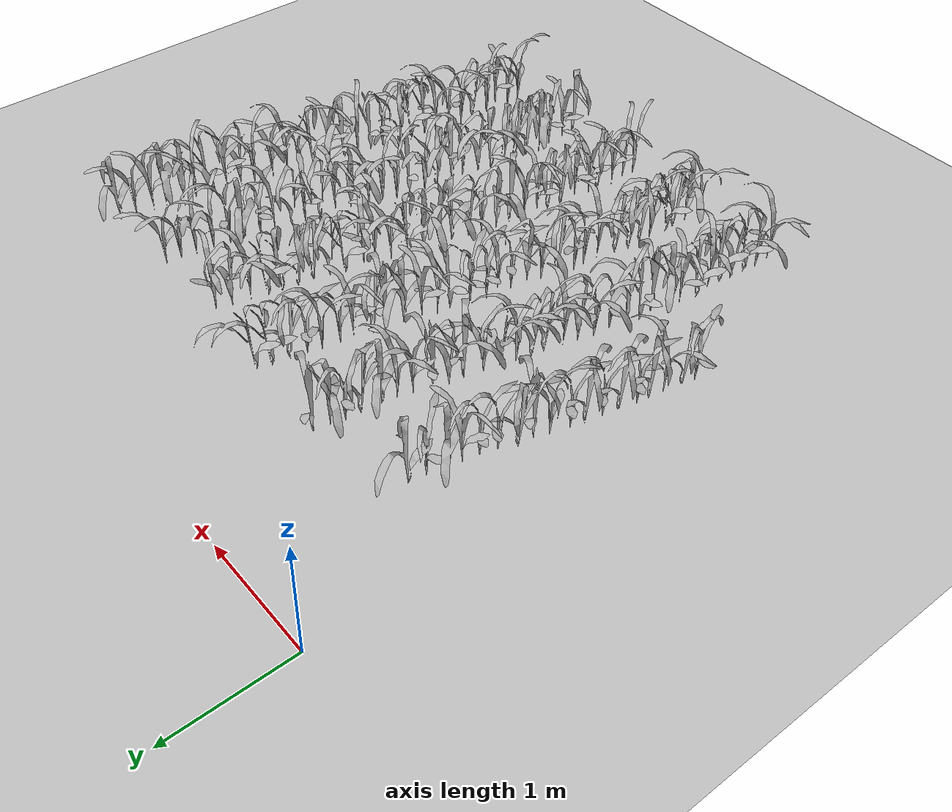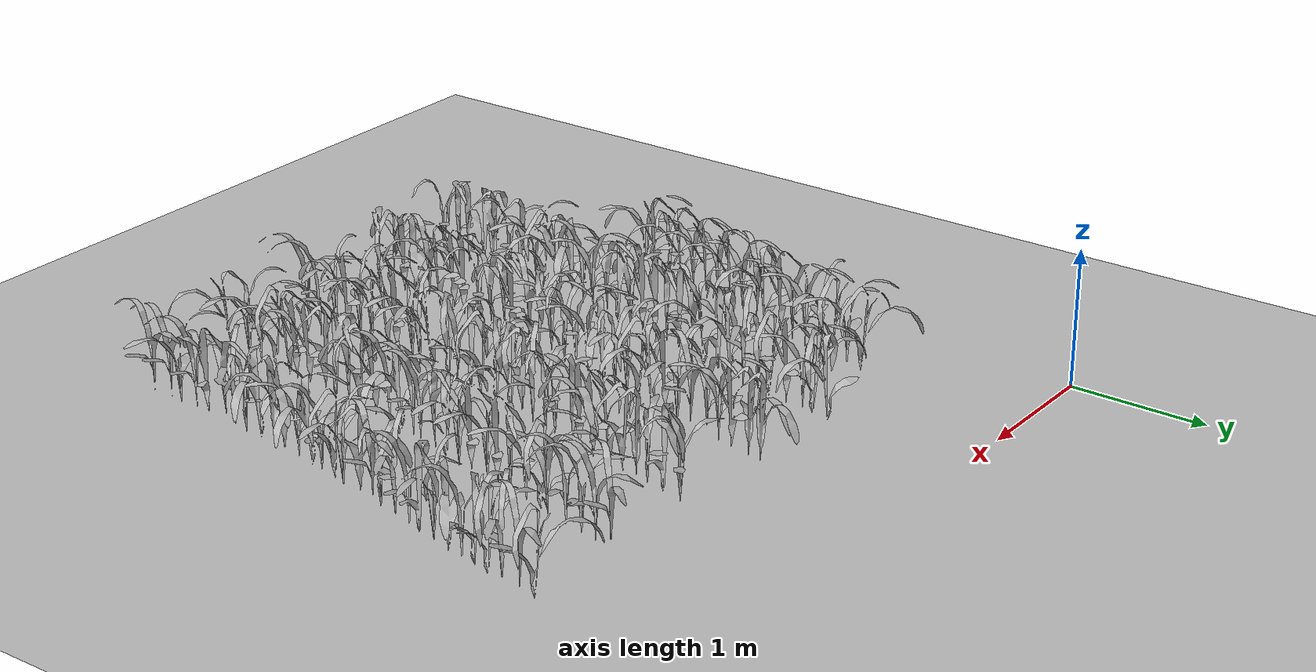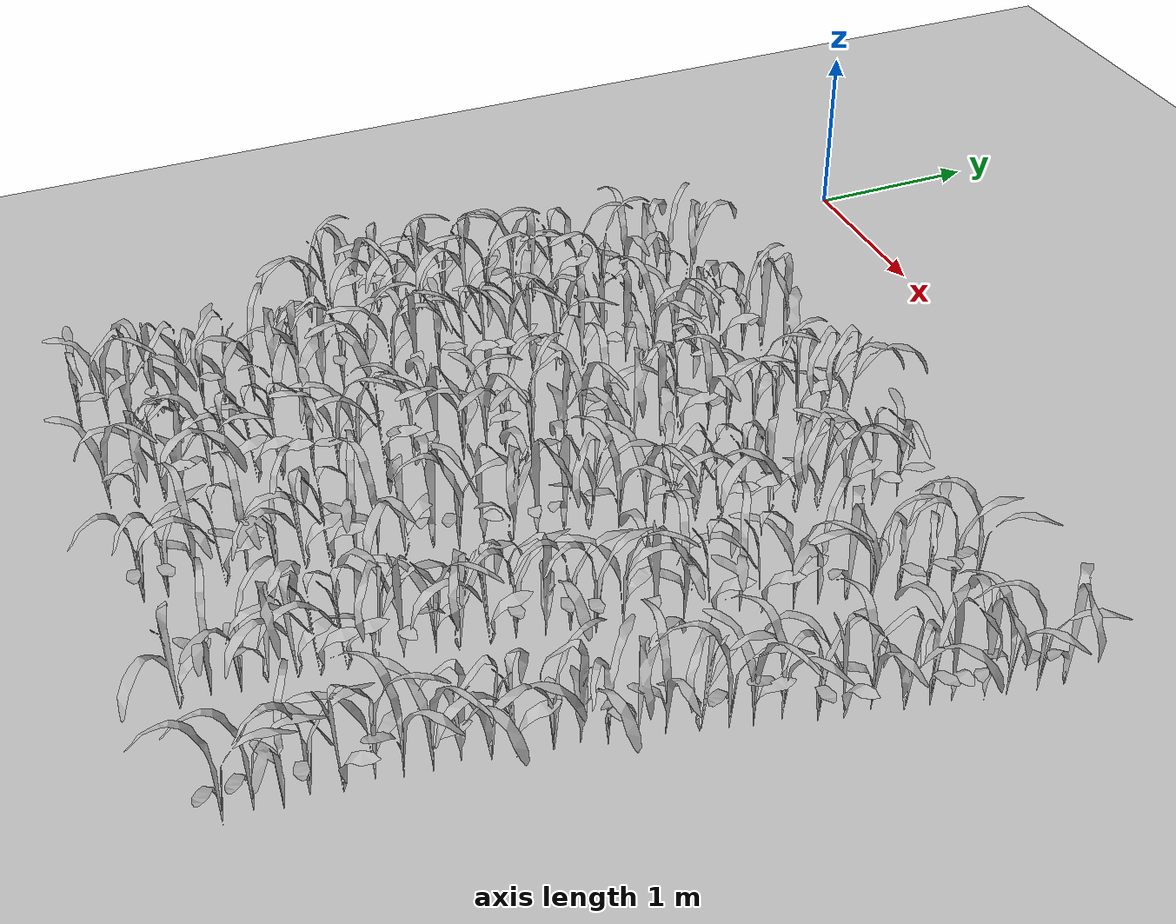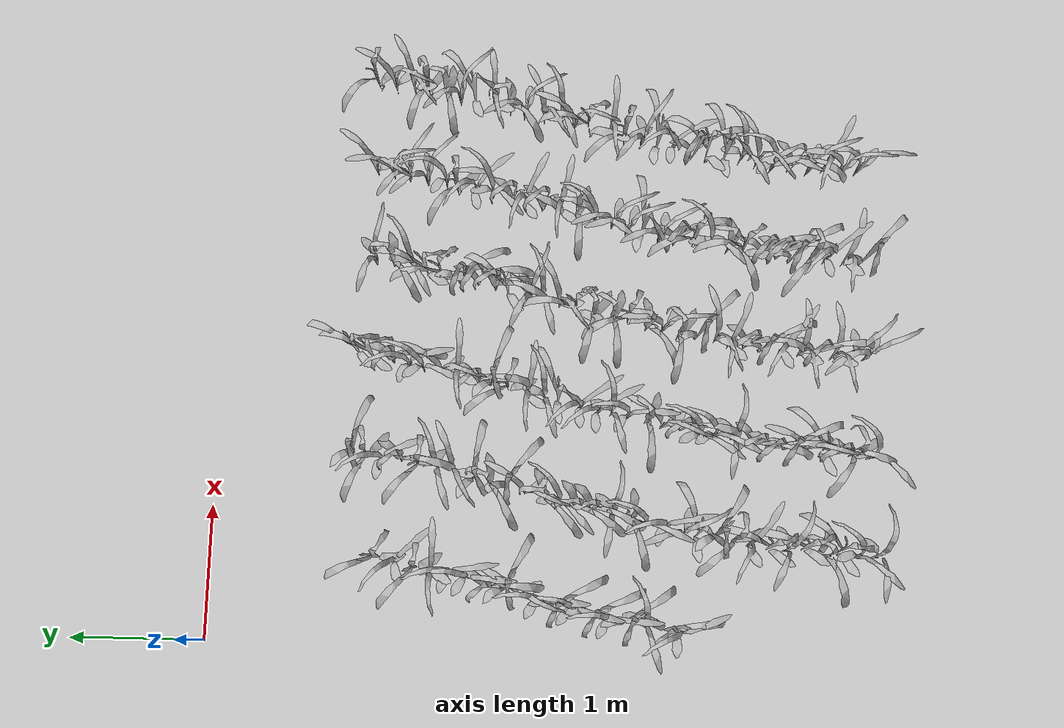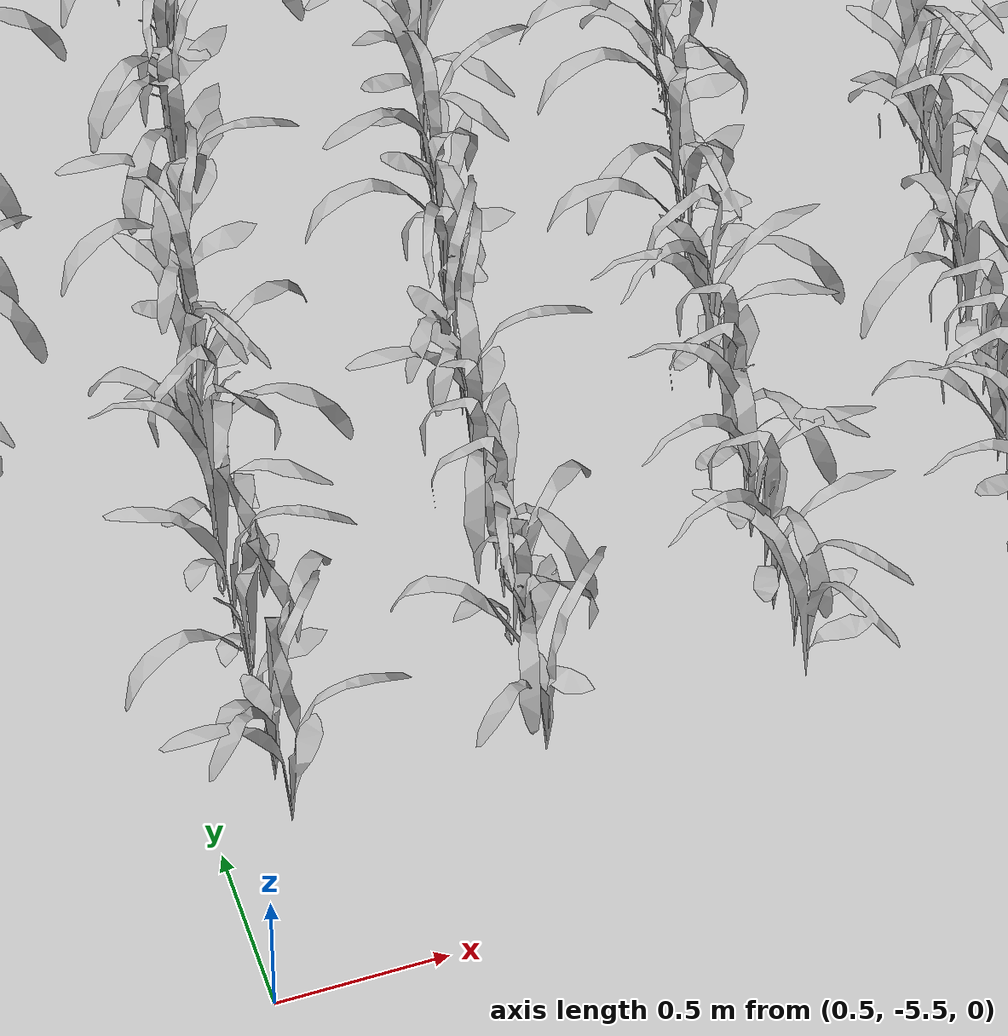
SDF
<sdf version="1.7">
 <world name="default">
  <model name="ground_plane">
   <static>1</static>
   <link name="link">
    <collision name="collision">
     <geometry><plane><normal>0 0 1</normal><size>100 100</size></plane></geometry>
     <surface>
      <contact><collide_bitmask>65535</collide_bitmask></contact>
      <friction><ode><mu>100</mu><mu2>50</mu2></ode></friction>
     </surface>
    </collision>
    <visual name="visual">
     <cast_shadows>0</cast_shadows>
     <geometry><plane><normal>0 0 1</normal><size>100 100</size></plane></geometry>
     <material>
      <script><uri>file://media/materials/scripts/gazebo.material</uri><name>Gazebo/Grey</name></script>
     </material>
    </visual>
   </link>
  </model>
  <include>
   <uri>model://maize_02</uri>
   <pose>0.1277047239134689 -3.4926252040272794 0.0 0.0 0.0 1.0021984375671156</pose>
   <name>maize_02_0400</name>
   <static>true</static>
  </include>
  <include>
   <uri>model://maize_01</uri>
   <pose>0.15152392635024872 -3.3870167927361368 0.0 0.0 0.0 5.639943665620452</pose>
   <name>maize_01_0401</name>
   <static>true</static>
  </include>
  <include>
   <uri>model://maize_02</uri>
   <pose>0.1875724244560694 -3.2309676934646183 0.0 0.0 0.0 5.5798212628701975</pose>
   <name>maize_02_0402</name>
   <static>true</static>
  </include>
  <include>
   <uri>model://maize_01</uri>
   <pose>0.20466012958833404 -3.107736745166044 0.0 0.0 0.0 6.118098017414376</pose>
   <name>maize_01_0403</name>
   <static>true</static>
  </include>
  <include>
   <uri>model://maize_02</uri>
   <pose>0.2175462779112435 -2.993145404726485 0.0 0.0 0.0 0.5346063163302878</pose>
   <name>maize_02_0404</name>
   <static>true</static>
  </include>
  <include>
   <uri>model://maize_01</uri>
   <pose>0.2500528732022624 -2.852034122455555 0.0 0.0 0.0 5.91765327505184</pose>
   <name>maize_01_0405</name>
   <static>true</static>
  </include>
  <include>
   <uri>model://maize_02</uri>
   <pose>0.2845762357668897 -2.7238732735406077 0.0 0.0 0.0 0.3588543243786093</pose>
   <name>maize_02_0406</name>
   <static>true</static>
  </include>
  <include>
   <uri>model://maize_01</uri>
   <pose>0.31663718071819663 -2.5899639587769574 0.0 0.0 0.0 5.979531192545345</pose>
   <name>maize_01_0407</name>
   <static>true</static>
  </include>
  <include>
   <uri>model://maize_02</uri>
   <pose>0.3437963856912069 -2.4705835438003603 0.0 0.0 0.0 0.5199710670581872</pose>
   <name>maize_02_0408</name>
   <static>true</static>
  </include>
  <include>
   <uri>model://maize_02</uri>
   <pose>0.3899523931416204 -2.3201242934992363 0.0 0.0 0.0 3.2497489951838316</pose>
   <name>maize_02_0409</name>
   <static>true</static>
  </include>
  <include>
   <uri>model://maize_01</uri>
   <pose>0.43666427125195345 -2.2166649967277237 0.0 0.0 0.0 0.3125234000211946</pose>
   <name>maize_01_0410</name>
   <static>true</static>
  </include>
  <include>
   <uri>model://maize_01</uri>
   <pose>0.4366089077712753 -2.077201427779984 0.0 0.0 0.0 5.4581638083367725</pose>
   <name>maize_01_0411</name>
   <static>true</static>
  </include>
  <include>
   <uri>model://maize_02</uri>
   <pose>0.4942706937051919 -1.9409190503233227 0.0 0.0 0.0 0.5190449045201507</pose>
   <name>maize_02_0412</name>
   <static>true</static>
  </include>
  <include>
   <uri>model://maize_02</uri>
   <pose>0.5333821467643883 -1.8108121412433411 0.0 0.0 0.0 0.7466258723406464</pose>
   <name>maize_02_0413</name>
   <static>true</static>
  </include>
  <include>
   <uri>model://maize_02</uri>
   <pose>0.551393515317964 -1.672177785380539 0.0 0.0 0.0 2.17413172345358</pose>
   <name>maize_02_0414</name>
   <static>true</static>
  </include>
  <include>
   <uri>model://maize_01</uri>
   <pose>0.574193578098822 -1.5621724347153678 0.0 0.0 0.0 3.2175229171178508</pose>
   <name>maize_01_0415</name>
   <static>true</static>
  </include>
  <include>
   <uri>model://maize_02</uri>
   <pose>0.6107905425712149 -1.4144155714222382 0.0 0.0 0.0 1.3235440084609205</pose>
   <name>maize_02_0416</name>
   <static>true</static>
  </include>
  <include>
   <uri>model://maize_01</uri>
   <pose>0.6414982884192121 -1.2796630970378404 0.0 0.0 0.0 2.791193082371024</pose>
   <name>maize_01_0417</name>
   <static>true</static>
  </include>
  <include>
   <uri>model://maize_02</uri>
   <pose>0.717468267149442 -4.950679886276958 0.0 0.0 0.0 5.237281959077512</pose>
   <name>maize_02_0464</name>
   <static>true</static>
  </include>
  <include>
   <uri>model://maize_02</uri>
   <pose>0.7123961812005529 -4.804322509503669 0.0 0.0 0.0 6.1182013030927855</pose>
   <name>maize_02_0465</name>
   <static>true</static>
  </include>
  <include>
   <uri>model://maize_01</uri>
   <pose>0.7421655740802008 -4.6896552606559245 0.0 0.0 0.0 1.6867244557853553</pose>
   <name>maize_01_0466</name>
   <static>true</static>
  </include>
  <include>
   <uri>model://maize_01</uri>
   <pose>0.7350465480073028 -4.540067368763894 0.0 0.0 0.0 4.217719407159963</pose>
   <name>maize_01_0467</name>
   <static>true</static>
  </include>
  <include>
   <uri>model://maize_01</uri>
   <pose>0.7650809212652275 -4.432710572139986 0.0 0.0 0.0 2.1277782888882872</pose>
   <name>maize_01_0468</name>
   <static>true</static>
  </include>
  <include>
   <uri>model://maize_02</uri>
   <pose>0.7503069461949116 -4.286606244629076 0.0 0.0 0.0 4.856808947746749</pose>
   <name>maize_02_0469</name>
   <static>true</static>
  </include>
  <include>
   <uri>model://maize_01</uri>
   <pose>0.7580829601661346 -4.168495513765396 0.0 0.0 0.0 2.054599571129183</pose>
   <name>maize_01_0470</name>
   <static>true</static>
  </include>
  <include>
   <uri>model://maize_02</uri>
   <pose>0.778083988274943 -4.012264782241085 0.0 0.0 0.0 1.5837229904740955</pose>
   <name>maize_02_0471</name>
   <static>true</static>
  </include>
  <include>
   <uri>model://maize_01</uri>
   <pose>0.8216058158504295 -3.9096848095354377 0.0 0.0 0.0 3.0867015377662756</pose>
   <name>maize_01_0472</name>
   <static>true</static>
  </include>
  <include>
   <uri>model://maize_01</uri>
   <pose>0.837480383160489 -3.7630053681978697 0.0 0.0 0.0 0.265867978428594</pose>
   <name>maize_01_0473</name>
   <static>true</static>
  </include>
  <include>
   <uri>model://maize_01</uri>
   <pose>0.8364524656090252 -3.632757930737775 0.0 0.0 0.0 1.1889546375642823</pose>
   <name>maize_01_0474</name>
   <static>true</static>
  </include>
  <include>
   <uri>model://maize_02</uri>
   <pose>0.8583035469183585 -3.5171970691331973 0.0 0.0 0.0 4.105318458159604</pose>
   <name>maize_02_0475</name>
   <static>true</static>
  </include>
  <include>
   <uri>model://maize_02</uri>
   <pose>0.9056142205577219 -3.391033218966011 0.0 0.0 0.0 0.7799890162854513</pose>
   <name>maize_02_0476</name>
   <static>true</static>
  </include>
  <include>
   <uri>model://maize_02</uri>
   <pose>0.9211406230331379 -3.246308764413866 0.0 0.0 0.0 0.16998319472879322</pose>
   <name>maize_02_0477</name>
   <static>true</static>
  </include>
  <include>
   <uri>model://maize_01</uri>
   <pose>0.9614080078751212 -3.1174407688047343 0.0 0.0 0.0 4.208370546140037</pose>
   <name>maize_01_0478</name>
   <static>true</static>
  </include>
  <include>
   <uri>model://maize_02</uri>
   <pose>0.9876605419223813 -2.992020622446887 0.0 0.0 0.0 5.128662498763261</pose>
   <name>maize_02_0479</name>
   <static>true</static>
  </include>
  <include>
   <uri>model://maize_01</uri>
   <pose>1.0317150974413651 -2.84553424861765 0.0 0.0 0.0 5.07865323575426</pose>
   <name>maize_01_0480</name>
   <static>true</static>
  </include>
  <include>
   <uri>model://maize_01</uri>
   <pose>1.0374943704240616 -2.7294409913921998 0.0 0.0 0.0 4.925102220930413</pose>
   <name>maize_01_0481</name>
   <static>true</static>
  </include>
  <include>
   <uri>model://maize_02</uri>
   <pose>1.072919451673292 -2.607414859283424 0.0 0.0 0.0 6.042266716901151</pose>
   <name>maize_02_0482</name>
   <static>true</static>
  </include>
  <include>
   <uri>model://maize_01</uri>
   <pose>1.0986613338124804 -2.4794643491932575 0.0 0.0 0.0 4.663167473952264</pose>
   <name>maize_01_0483</name>
   <static>true</static>
  </include>
  <include>
   <uri>model://maize_02</uri>
   <pose>1.1389598328079076 -2.349258843681133 0.0 0.0 0.0 3.240414938634114</pose>
   <name>maize_02_0484</name>
   <static>true</static>
  </include>
  <include>
   <uri>model://maize_01</uri>
   <pose>1.188768126276664 -2.2092371770322057 0.0 0.0 0.0 0.09961620560731291</pose>
   <name>maize_01_0485</name>
   <static>true</static>
  </include>
  <include>
   <uri>model://maize_01</uri>
   <pose>1.1983480247249856 -2.07824833536553 0.0 0.0 0.0 4.43576551502959</pose>
   <name>maize_01_0486</name>
   <static>true</static>
  </include>
  <include>
   <uri>model://maize_01</uri>
   <pose>1.2323905012043441 -1.9628520186232155 0.0 0.0 0.0 0.6139487144404128</pose>
   <name>maize_01_0487</name>
   <static>true</static>
  </include>
  <include>
   <uri>model://maize_02</uri>
   <pose>1.2843727465572374 -1.8169375084141175 0.0 0.0 0.0 2.57800557805723</pose>
   <name>maize_02_0488</name>
   <static>true</static>
  </include>
  <include>
   <uri>model://maize_02</uri>
   <pose>1.2962563481693488 -1.6853287236669134 0.0 0.0 0.0 5.6203096588998465</pose>
   <name>maize_02_0489</name>
   <static>true</static>
  </include>
  <include>
   <uri>model://maize_01</uri>
   <pose>1.3297298444552295 -1.5717673564006567 0.0 0.0 0.0 3.22486296027484</pose>
   <name>maize_01_0490</name>
   <static>true</static>
  </include>
  <include>
   <uri>model://maize_01</uri>
   <pose>1.356396103222911 -1.4153062642762662 0.0 0.0 0.0 5.307215230098666</pose>
   <name>maize_01_0491</name>
   <static>true</static>
  </include>
  <include>
   <uri>model://maize_02</uri>
   <pose>1.3604718839425034 -1.2836034022182792 0.0 0.0 0.0 0.9547559430421104</pose>
   <name>maize_02_0492</name>
   <static>true</static>
  </include>
  <include>
   <uri>model://maize_01</uri>
   <pose>1.398513089274952 -1.1752637413636002 0.0 0.0 0.0 3.52339599375698</pose>
   <name>maize_01_0493</name>
   <static>true</static>
  </include>
  <include>
   <uri>model://maize_01</uri>
   <pose>1.4181608995325357 -1.050494995819068 0.0 0.0 0.0 0.4196443565358958</pose>
   <name>maize_01_0494</name>
   <static>true</static>
  </include>
  <include>
   <uri>model://maize_02</uri>
   <pose>1.4589170930458415 -4.9457510007544245 0.0 0.0 0.0 6.016486085664898</pose>
   <name>maize_02_0541</name>
   <static>true</static>
  </include>
  <include>
   <uri>model://maize_01</uri>
   <pose>1.4758856310809605 -4.802717234548133 0.0 0.0 0.0 3.3247491133320275</pose>
   <name>maize_01_0542</name>
   <static>true</static>
  </include>
  <include>
   <uri>model://maize_01</uri>
   <pose>1.4808207075400535 -4.67303034397462 0.0 0.0 0.0 5.23688169561556</pose>
   <name>maize_01_0543</name>
   <static>true</static>
  </include>
  <include>
   <uri>model://maize_01</uri>
   <pose>1.4812156024347949 -4.5800879329608115 0.0 0.0 0.0 1.5288866187533485</pose>
   <name>maize_01_0544</name>
   <static>true</static>
  </include>
  <include>
   <uri>model://maize_02</uri>
   <pose>1.504311617228116 -4.422275845770799 0.0 0.0 0.0 3.412022061122812</pose>
   <name>maize_02_0545</name>
   <static>true</static>
  </include>
  <include>
   <uri>model://maize_01</uri>
   <pose>1.511366465737274 -4.318863781950973 0.0 0.0 0.0 5.8891768085046365</pose>
   <name>maize_01_0546</name>
   <static>true</static>
  </include>
  <include>
   <uri>model://maize_01</uri>
   <pose>1.5030911563584801 -4.184174072104243 0.0 0.0 0.0 5.475415888901724</pose>
   <name>maize_01_0547</name>
   <static>true</static>
  </include>
  <include>
   <uri>model://maize_01</uri>
   <pose>1.534715395668213 -4.062229440742427 0.0 0.0 0.0 5.194995546103864</pose>
   <name>maize_01_0548</name>
   <static>true</static>
  </include>
  <include>
   <uri>model://maize_02</uri>
   <pose>1.5756495777533732 -3.8976369963315727 0.0 0.0 0.0 5.16963508588394</pose>
   <name>maize_02_0549</name>
   <static>true</static>
  </include>
  <include>
   <uri>model://maize_02</uri>
   <pose>1.5904647336923057 -3.7678121575052432 0.0 0.0 0.0 0.10888271657875227</pose>
   <name>maize_02_0550</name>
   <static>true</static>
  </include>
  <include>
   <uri>model://maize_02</uri>
   <pose>1.581144393365889 -3.6544169673991678 0.0 0.0 0.0 6.281839795859628</pose>
   <name>maize_02_0551</name>
   <static>true</static>
  </include>
  <include>
   <uri>model://maize_01</uri>
   <pose>1.643197115196507 -3.528128241598087 0.0 0.0 0.0 5.3328225211652525</pose>
   <name>maize_01_0552</name>
   <static>true</static>
  </include>
  <include>
   <uri>model://maize_02</uri>
   <pose>1.659555776373378 -3.3754798064477316 0.0 0.0 0.0 3.2500487654807038</pose>
   <name>maize_02_0553</name>
   <static>true</static>
  </include>
  <include>
   <uri>model://maize_01</uri>
   <pose>1.6960689329659207 -3.255287007873686 0.0 0.0 0.0 3.9473493102319632</pose>
   <name>maize_01_0554</name>
   <static>true</static>
  </include>
  <include>
   <uri>model://maize_02</uri>
   <pose>1.724017319421767 -3.118481777006079 0.0 0.0 0.0 0.5491271797506945</pose>
   <name>maize_02_0555</name>
   <static>true</static>
  </include>
  <include>
   <uri>model://maize_02</uri>
   <pose>1.7425648851629594 -2.9921024567981367 0.0 0.0 0.0 5.5515795268742725</pose>
   <name>maize_02_0556</name>
   <static>true</static>
  </include>
  <include>
   <uri>model://maize_02</uri>
   <pose>1.7471718789509605 -2.8901427962132336 0.0 0.0 0.0 1.0911197830491035</pose>
   <name>maize_02_0557</name>
   <static>true</static>
  </include>
  <include>
   <uri>model://maize_02</uri>
   <pose>1.7847534564482286 -2.757243798590448 0.0 0.0 0.0 1.1867410480633607</pose>
   <name>maize_02_0558</name>
   <static>true</static>
  </include>
  <include>
   <uri>model://maize_01</uri>
   <pose>1.8339029398501825 -2.594151828150739 0.0 0.0 0.0 1.2312705480204773</pose>
   <name>maize_01_0559</name>
   <static>true</static>
  </include>
  <include>
   <uri>model://maize_02</uri>
   <pose>1.8429605183897724 -2.4810819900288457 0.0 0.0 0.0 5.559503903575865</pose>
   <name>maize_02_0560</name>
   <static>true</static>
  </include>
  <include>
   <uri>model://maize_02</uri>
   <pose>1.8756725446060443 -2.3583437375075618 0.0 0.0 0.0 2.0459181928447285</pose>
   <name>maize_02_0561</name>
   <static>true</static>
  </include>
  <include>
   <uri>model://maize_01</uri>
   <pose>1.9267075706751562 -2.2195542960302697 0.0 0.0 0.0 2.9730726040244253</pose>
   <name>maize_01_0562</name>
   <static>true</static>
  </include>
  <include>
   <uri>model://maize_01</uri>
   <pose>1.9682864600602155 -2.0837636740865877 0.0 0.0 0.0 0.4367133328548516</pose>
   <name>maize_01_0563</name>
   <static>true</static>
  </include>
  <include>
   <uri>model://maize_01</uri>
   <pose>1.9677629201531912 -1.9711787092148858 0.0 0.0 0.0 5.379202218647667</pose>
   <name>maize_01_0564</name>
   <static>true</static>
  </include>
  <include>
   <uri>model://maize_02</uri>
   <pose>2.028626354463134 -1.829743033864595 0.0 0.0 0.0 2.1791941058794913</pose>
   <name>maize_02_0565</name>
   <static>true</static>
  </include>
  <include>
   <uri>model://maize_02</uri>
   <pose>2.0402264806884056 -1.7151626221494858 0.0 0.0 0.0 3.329764788008538</pose>
   <name>maize_02_0566</name>
   <static>true</static>
  </include>
  <include>
   <uri>model://maize_02</uri>
   <pose>2.0567742230634676 -1.5649866986081118 0.0 0.0 0.0 0.1655771836177778</pose>
   <name>maize_02_0567</name>
   <static>true</static>
  </include>
  <include>
   <uri>model://maize_02</uri>
   <pose>2.0863667132630996 -1.4553091402116867 0.0 0.0 0.0 0.7937547596486705</pose>
   <name>maize_02_0568</name>
   <static>true</static>
  </include>
  <include>
   <uri>model://maize_01</uri>
   <pose>2.1207600775928834 -1.3289422391603474 0.0 0.0 0.0 5.481466074392928</pose>
   <name>maize_01_0569</name>
   <static>true</static>
  </include>
  <include>
   <uri>model://maize_01</uri>
   <pose>2.150149640409395 -1.178315627430764 0.0 0.0 0.0 2.054846285846103</pose>
   <name>maize_01_0570</name>
   <static>true</static>
  </include>
  <include>
   <uri>model://maize_01</uri>
   <pose>2.183828010920674 -1.065249054714595 0.0 0.0 0.0 1.9527763095167145</pose>
   <name>maize_01_0571</name>
   <static>true</static>
  </include>
  <include>
   <uri>model://maize_02</uri>
   <pose>2.22373753324969 -4.941691124965317 0.0 0.0 0.0 4.07364179413857</pose>
   <name>maize_02_0618</name>
   <static>true</static>
  </include>
  <include>
   <uri>model://maize_02</uri>
   <pose>2.2307163768124503 -4.823522519933239 0.0 0.0 0.0 4.412796589633541</pose>
   <name>maize_02_0619</name>
   <static>true</static>
  </include>
  <include>
   <uri>model://maize_02</uri>
   <pose>2.2191696701667065 -4.683620817416154 0.0 0.0 0.0 2.2838811251957547</pose>
   <name>maize_02_0620</name>
   <static>true</static>
  </include>
  <include>
   <uri>model://maize_01</uri>
   <pose>2.2404151971209942 -4.540671756254868 0.0 0.0 0.0 5.562564305337857</pose>
   <name>maize_01_0621</name>
   <static>true</static>
  </include>
  <include>
   <uri>model://maize_02</uri>
   <pose>2.239108959115129 -4.431542275502592 0.0 0.0 0.0 2.2020811811657564</pose>
   <name>maize_02_0622</name>
   <static>true</static>
  </include>
  <include>
   <uri>model://maize_02</uri>
   <pose>2.267039716651625 -4.294686038255015 0.0 0.0 0.0 1.5126080612965085</pose>
   <name>maize_02_0623</name>
   <static>true</static>
  </include>
  <include>
   <uri>model://maize_01</uri>
   <pose>2.271081793780628 -4.148045209271741 0.0 0.0 0.0 5.899992546004179</pose>
   <name>maize_01_0624</name>
   <static>true</static>
  </include>
  <include>
   <uri>model://maize_01</uri>
   <pose>2.3005567761881864 -4.0261708003511805 0.0 0.0 0.0 5.318394633963156</pose>
   <name>maize_01_0625</name>
   <static>true</static>
  </include>
  <include>
   <uri>model://maize_02</uri>
   <pose>2.296369810174214 -3.896914005330696 0.0 0.0 0.0 1.8480493158071392</pose>
   <name>maize_02_0626</name>
   <static>true</static>
  </include>
  <include>
   <uri>model://maize_02</uri>
   <pose>2.3394290608427117 -3.7931844123406684 0.0 0.0 0.0 2.4580550910494807</pose>
   <name>maize_02_0627</name>
   <static>true</static>
  </include>
  <include>
   <uri>model://maize_01</uri>
   <pose>2.3652675495875957 -3.6598338556548335 0.0 0.0 0.0 0.04295048955946836</pose>
   <name>maize_01_0628</name>
   <static>true</static>
  </include>
  <include>
   <uri>model://maize_01</uri>
   <pose>2.363384495629513 -3.5054160649603916 0.0 0.0 0.0 3.7693021806569162</pose>
   <name>maize_01_0629</name>
   <static>true</static>
  </include>
  <include>
   <uri>model://maize_02</uri>
   <pose>2.410956247340659 -3.3896998629205273 0.0 0.0 0.0 3.72054275246867</pose>
   <name>maize_02_0630</name>
   <static>true</static>
  </include>
  <include>
   <uri>model://maize_01</uri>
   <pose>2.41535522236364 -3.2603464646220472 0.0 0.0 0.0 4.486185758051582</pose>
   <name>maize_01_0631</name>
   <static>true</static>
  </include>
  <include>
   <uri>model://maize_01</uri>
   <pose>2.475464891430119 -3.1258359608780575 0.0 0.0 0.0 2.8181240811218102</pose>
   <name>maize_01_0632</name>
   <static>true</static>
  </include>
  <include>
   <uri>model://maize_01</uri>
   <pose>2.477806607944658 -2.991730514808722 0.0 0.0 0.0 3.990926873954783</pose>
   <name>maize_01_0633</name>
   <static>true</static>
  </include>
  <include>
   <uri>model://maize_01</uri>
   <pose>2.4979780801233997 -2.8506377715315367 0.0 0.0 0.0 3.6867712798517496</pose>
   <name>maize_01_0634</name>
   <static>true</static>
  </include>
  <include>
   <uri>model://maize_01</uri>
   <pose>2.534672896915118 -2.7302596811946795 0.0 0.0 0.0 2.3582132310265367</pose>
   <name>maize_01_0635</name>
   <static>true</static>
  </include>
  <include>
   <uri>model://maize_02</uri>
   <pose>2.587876546704624 -2.5975840358445406 0.0 0.0 0.0 2.692723545631812</pose>
   <name>maize_02_0636</name>
   <static>true</static>
  </include>
  <include>
   <uri>model://maize_02</uri>
   <pose>2.621028129177961 -2.4599857542101953 0.0 0.0 0.0 5.5492821596951485</pose>
   <name>maize_02_0637</name>
   <static>true</static>
  </include>
  <include>
   <uri>model://maize_02</uri>
   <pose>2.6421628756869304 -2.3670465973101287 0.0 0.0 0.0 4.865775220697621</pose>
   <name>maize_02_0638</name>
   <static>true</static>
  </include>
  <include>
   <uri>model://maize_01</uri>
   <pose>2.6702995704211268 -2.2034159616480586 0.0 0.0 0.0 1.7569059025855194</pose>
   <name>maize_01_0639</name>
   <static>true</static>
  </include>
  <include>
   <uri>model://maize_01</uri>
   <pose>2.71765462533726 -2.099107843190066 0.0 0.0 0.0 5.143010169328218</pose>
   <name>maize_01_0640</name>
   <static>true</static>
  </include>
  <include>
   <uri>model://maize_01</uri>
   <pose>2.7550672300750247 -1.9677262565232223 0.0 0.0 0.0 5.534792975370966</pose>
   <name>maize_01_0641</name>
   <static>true</static>
  </include>
  <include>
   <uri>model://maize_01</uri>
   <pose>2.763892472494455 -1.8338016463870017 0.0 0.0 0.0 5.959814125365118</pose>
   <name>maize_01_0642</name>
   <static>true</static>
  </include>
  <include>
   <uri>model://maize_01</uri>
   <pose>2.8010427848141686 -1.6947092626801432 0.0 0.0 0.0 2.6006087776308395</pose>
   <name>maize_01_0643</name>
   <static>true</static>
  </include>
  <include>
   <uri>model://maize_01</uri>
   <pose>2.8195968129932285 -1.5781113326527223 0.0 0.0 0.0 2.11203299162235</pose>
   <name>maize_01_0644</name>
   <static>true</static>
  </include>
  <include>
   <uri>model://maize_02</uri>
   <pose>2.8645102603747703 -1.452127017156356 0.0 0.0 0.0 5.789560346123639</pose>
   <name>maize_02_0645</name>
   <static>true</static>
  </include>
  <include>
   <uri>model://maize_01</uri>
   <pose>2.8922021174275927 -1.3025621404087857 0.0 0.0 0.0 4.487078816089135</pose>
   <name>maize_01_0646</name>
   <static>true</static>
  </include>
  <include>
   <uri>model://maize_02</uri>
   <pose>2.9086458916786566 -1.1674390022732484 0.0 0.0 0.0 5.022675975675438</pose>
   <name>maize_02_0647</name>
   <static>true</static>
  </include>
  <include>
   <uri>model://maize_01</uri>
   <pose>2.991075855469832 -4.9483650261600935 0.0 0.0 0.0 0.026425748707721495</pose>
   <name>maize_01_0695</name>
   <static>true</static>
  </include>
  <include>
   <uri>model://maize_02</uri>
   <pose>2.970854868297361 -4.796333053724374 0.0 0.0 0.0 1.9260407399094401</pose>
   <name>maize_02_0696</name>
   <static>true</static>
  </include>
  <include>
   <uri>model://maize_02</uri>
   <pose>2.994276612392348 -4.66067152845791 0.0 0.0 0.0 1.2518770628638154</pose>
   <name>maize_02_0697</name>
   <static>true</static>
  </include>
  <include>
   <uri>model://maize_01</uri>
   <pose>2.981030598906569 -4.527013273637021 0.0 0.0 0.0 3.272346161863849</pose>
   <name>maize_01_0698</name>
   <static>true</static>
  </include>
  <include>
   <uri>model://maize_01</uri>
   <pose>2.9965749161087145 -4.3949160040981265 0.0 0.0 0.0 6.008236368623203</pose>
   <name>maize_01_0699</name>
   <static>true</static>
  </include>
  <include>
   <uri>model://maize_01</uri>
   <pose>3.024514511358095 -4.293230622424589 0.0 0.0 0.0 5.453022726099563</pose>
   <name>maize_01_0700</name>
   <static>true</static>
  </include>
  <include>
   <uri>model://maize_01</uri>
   <pose>3.033322906483949 -4.16698959904502 0.0 0.0 0.0 5.604363343745482</pose>
   <name>maize_01_0701</name>
   <static>true</static>
  </include>
  <include>
   <uri>model://maize_01</uri>
   <pose>3.0412680908112883 -4.018088148542682 0.0 0.0 0.0 2.4844806550119944</pose>
   <name>maize_01_0702</name>
   <static>true</static>
  </include>
  <include>
   <uri>model://maize_01</uri>
   <pose>3.063026940217823 -3.8975774809302997 0.0 0.0 0.0 4.363789056863912</pose>
   <name>maize_01_0703</name>
   <static>true</static>
  </include>
  <include>
   <uri>model://maize_02</uri>
   <pose>3.096984562154558 -3.7520502504976823 0.0 0.0 0.0 6.080628578314212</pose>
   <name>maize_02_0704</name>
   <static>true</static>
  </include>
  <include>
   <uri>model://maize_01</uri>
   <pose>3.1108064952457286 -3.6379018940033183 0.0 0.0 0.0 2.7637274773851086</pose>
   <name>maize_01_0705</name>
   <static>true</static>
  </include>
  <include>
   <uri>model://maize_01</uri>
   <pose>3.1245852505800067 -3.4928211260871374 0.0 0.0 0.0 5.701508816431117</pose>
   <name>maize_01_0706</name>
   <static>true</static>
  </include>
  <include>
   <uri>model://maize_02</uri>
   <pose>3.133974107544917 -3.3639389839323495 0.0 0.0 0.0 4.137611918115147</pose>
   <name>maize_02_0707</name>
   <static>true</static>
  </include>
  <include>
   <uri>model://maize_01</uri>
   <pose>3.1714894534483347 -3.2316203392567346 0.0 0.0 0.0 0.9030124684820429</pose>
   <name>maize_01_0708</name>
   <static>true</static>
  </include>
  <include>
   <uri>model://maize_02</uri>
   <pose>3.190581273261707 -3.1090805769059435 0.0 0.0 0.0 3.96986481946162</pose>
   <name>maize_02_0709</name>
   <static>true</static>
  </include>
  <include>
   <uri>model://maize_02</uri>
   <pose>3.243428483696712 -2.9986528225863665 0.0 0.0 0.0 4.051291893852084</pose>
   <name>maize_02_0710</name>
   <static>true</static>
  </include>
  <include>
   <uri>model://maize_02</uri>
   <pose>3.255223937080468 -2.8650469259245717 0.0 0.0 0.0 6.252882253956029</pose>
   <name>maize_02_0711</name>
   <static>true</static>
  </include>
  <include>
   <uri>model://maize_01</uri>
   <pose>3.313871705941651 -2.7193454590182595 0.0 0.0 0.0 3.925420004831264</pose>
   <name>maize_01_0712</name>
   <static>true</static>
  </include>
  <include>
   <uri>model://maize_02</uri>
   <pose>3.346550362688108 -2.5908533893792134 0.0 0.0 0.0 1.9642907925254316</pose>
   <name>maize_02_0713</name>
   <static>true</static>
  </include>
  <include>
   <uri>model://maize_01</uri>
   <pose>3.372097532703584 -2.4590840063543236 0.0 0.0 0.0 5.262201298625312</pose>
   <name>maize_01_0714</name>
   <static>true</static>
  </include>
  <include>
   <uri>model://maize_02</uri>
   <pose>3.3918003104712935 -2.3176616317008074 0.0 0.0 0.0 1.7118134920330697</pose>
   <name>maize_02_0715</name>
   <static>true</static>
  </include>
  <include>
   <uri>model://maize_01</uri>
   <pose>3.4128449645268346 -2.210315936572769 0.0 0.0 0.0 5.155013915375043</pose>
   <name>maize_01_0716</name>
   <static>true</static>
  </include>
  <include>
   <uri>model://maize_02</uri>
   <pose>3.465387210511573 -2.0647432093554845 0.0 0.0 0.0 6.038426516117093</pose>
   <name>maize_02_0717</name>
   <static>true</static>
  </include>
  <include>
   <uri>model://maize_02</uri>
   <pose>3.475760654022657 -1.9371016036740942 0.0 0.0 0.0 1.2831885630875262</pose>
   <name>maize_02_0718</name>
   <static>true</static>
  </include>
  <include>
   <uri>model://maize_01</uri>
   <pose>3.507793358914211 -1.7910413784341357 0.0 0.0 0.0 3.3696797209854696</pose>
   <name>maize_01_0719</name>
   <static>true</static>
  </include>
  <include>
   <uri>model://maize_02</uri>
   <pose>3.563958792954336 -1.6958632669543252 0.0 0.0 0.0 0.5287040825914019</pose>
   <name>maize_02_0720</name>
   <static>true</static>
  </include>
  <include>
   <uri>model://maize_02</uri>
   <pose>3.574125358582394 -1.5469363137866063 0.0 0.0 0.0 4.44187886777072</pose>
   <name>maize_02_0721</name>
   <static>true</static>
  </include>
  <include>
   <uri>model://maize_02</uri>
   <pose>3.603203795759119 -1.4034435203105702 0.0 0.0 0.0 4.638795414494953</pose>
   <name>maize_02_0722</name>
   <static>true</static>
  </include>
  <include>
   <uri>model://maize_02</uri>
   <pose>3.628168217360615 -1.2786705547813473 0.0 0.0 0.0 3.804729325927183</pose>
   <name>maize_02_0723</name>
   <static>true</static>
  </include>
  <include>
   <uri>model://maize_02</uri>
   <pose>3.642601139603389 -1.1521747198865355 0.0 0.0 0.0 3.0895795902567156</pose>
   <name>maize_02_0724</name>
   <static>true</static>
  </include>
  <include>
   <uri>model://maize_02</uri>
   <pose>3.736513899172818 -4.935123576597151 0.0 0.0 0.0 3.5926284025333657</pose>
   <name>maize_02_0772</name>
   <static>true</static>
  </include>
  <include>
   <uri>model://maize_02</uri>
   <pose>3.715821933483285 -4.794331751513317 0.0 0.0 0.0 3.6295724363160313</pose>
   <name>maize_02_0773</name>
   <static>true</static>
  </include>
  <include>
   <uri>model://maize_02</uri>
   <pose>3.7480037520614764 -4.671299794084311 0.0 0.0 0.0 1.688023995159888</pose>
   <name>maize_02_0774</name>
   <static>true</static>
  </include>
  <include>
   <uri>model://maize_02</uri>
   <pose>3.727064225453256 -4.5461814107716805 0.0 0.0 0.0 4.010464454803663</pose>
   <name>maize_02_0775</name>
   <static>true</static>
  </include>
  <include>
   <uri>model://maize_01</uri>
   <pose>3.7532813346508873 -4.405867488360854 0.0 0.0 0.0 5.045840505204134</pose>
   <name>maize_01_0776</name>
   <static>true</static>
  </include>
  <include>
   <uri>model://maize_02</uri>
   <pose>3.7417732804985877 -4.257703194187265 0.0 0.0 0.0 0.2235426744657582</pose>
   <name>maize_02_0777</name>
   <static>true</static>
  </include>
  <include>
   <uri>model://maize_02</uri>
   <pose>3.778611042596036 -4.138929101147337 0.0 0.0 0.0 2.7426015455437907</pose>
   <name>maize_02_0778</name>
   <static>true</static>
  </include>
  <include>
   <uri>model://maize_02</uri>
   <pose>3.8076610946949248 -4.011912144237392 0.0 0.0 0.0 5.775126478791339</pose>
   <name>maize_02_0779</name>
   <static>true</static>
  </include>
  <include>
   <uri>model://maize_01</uri>
   <pose>3.8056413934273645 -3.886046642416948 0.0 0.0 0.0 1.1886368431478855</pose>
   <name>maize_01_0780</name>
   <static>true</static>
  </include>
  <include>
   <uri>model://maize_01</uri>
   <pose>3.8271087326911846 -3.7469937380050746 0.0 0.0 0.0 1.7956369967266177</pose>
   <name>maize_01_0781</name>
   <static>true</static>
  </include>
  <include>
   <uri>model://maize_01</uri>
   <pose>3.844081930989391 -3.6379882247894777 0.0 0.0 0.0 5.756799870523294</pose>
   <name>maize_01_0782</name>
   <static>true</static>
  </include>
  <include>
   <uri>model://maize_02</uri>
   <pose>3.8806070687251917 -3.4749497599474966 0.0 0.0 0.0 0.9834626748364602</pose>
   <name>maize_02_0783</name>
   <static>true</static>
  </include>
  <include>
   <uri>model://maize_01</uri>
   <pose>3.892185817137569 -3.352897547827268 0.0 0.0 0.0 1.0082646659080685</pose>
   <name>maize_01_0784</name>
   <static>true</static>
  </include>
  <include>
   <uri>model://maize_02</uri>
   <pose>3.9279171993438857 -3.2323759605515474 0.0 0.0 0.0 4.620539181365305</pose>
   <name>maize_02_0785</name>
   <static>true</static>
  </include>
  <include>
   <uri>model://maize_01</uri>
   <pose>3.950476924274127 -3.098301462332824 0.0 0.0 0.0 3.0051819592208577</pose>
   <name>maize_01_0786</name>
   <static>true</static>
  </include>
  <include>
   <uri>model://maize_02</uri>
   <pose>3.999435980178878 -2.986656221290587 0.0 0.0 0.0 2.1436296499544976</pose>
   <name>maize_02_0787</name>
   <static>true</static>
  </include>
  <include>
   <uri>model://maize_01</uri>
   <pose>4.021803200898795 -2.8223373756337224 0.0 0.0 0.0 2.3872391970857407</pose>
   <name>maize_01_0788</name>
   <static>true</static>
  </include>
  <include>
   <uri>model://maize_02</uri>
   <pose>4.050205314821399 -2.695769311222584 0.0 0.0 0.0 3.334932846703226</pose>
   <name>maize_02_0789</name>
   <static>true</static>
  </include>
  <include>
   <uri>model://maize_02</uri>
   <pose>4.0869452758828135 -2.592956727560673 0.0 0.0 0.0 5.630447951194395</pose>
   <name>maize_02_0790</name>
   <static>true</static>
  </include>
  <include>
   <uri>model://maize_02</uri>
   <pose>4.106837221882719 -2.4601622345439598 0.0 0.0 0.0 2.6167465018077585</pose>
   <name>maize_02_0791</name>
   <static>true</static>
  </include>
  <include>
   <uri>model://maize_02</uri>
   <pose>4.155924563116164 -2.302287346769293 0.0 0.0 0.0 4.153867134611209</pose>
   <name>maize_02_0792</name>
   <static>true</static>
  </include>
  <include>
   <uri>model://maize_01</uri>
   <pose>4.186314552694789 -2.187674168151436 0.0 0.0 0.0 4.547810743780141</pose>
   <name>maize_01_0793</name>
   <static>true</static>
  </include>
  <include>
   <uri>model://maize_02</uri>
   <pose>4.208987555714115 -2.0624690310890323 0.0 0.0 0.0 2.285630704175632</pose>
   <name>maize_02_0794</name>
   <static>true</static>
  </include>
  <include>
   <uri>model://maize_01</uri>
   <pose>4.25448934560036 -1.9119721715868605 0.0 0.0 0.0 1.4809083755591974</pose>
   <name>maize_01_0795</name>
   <static>true</static>
  </include>
  <include>
   <uri>model://maize_02</uri>
   <pose>4.270211787753761 -1.7887649152157075 0.0 0.0 0.0 4.421073417431581</pose>
   <name>maize_02_0796</name>
   <static>true</static>
  </include>
  <include>
   <uri>model://maize_01</uri>
   <pose>4.280728719917088 -1.6790489588390132 0.0 0.0 0.0 4.120726396812642</pose>
   <name>maize_01_0797</name>
   <static>true</static>
  </include>
  <include>
   <uri>model://maize_01</uri>
   <pose>4.329329908068459 -1.5364363006478878 0.0 0.0 0.0 3.5911107923504373</pose>
   <name>maize_01_0798</name>
   <static>true</static>
  </include>
  <include>
   <uri>model://maize_02</uri>
   <pose>4.339620046198943 -1.425071454646943 0.0 0.0 0.0 2.6564607044244015</pose>
   <name>maize_02_0799</name>
   <static>true</static>
  </include>
  <include>
   <uri>model://maize_02</uri>
   <pose>4.361506328885076 -1.2736127795870764 0.0 0.0 0.0 3.24679899331369</pose>
   <name>maize_02_0800</name>
   <static>true</static>
  </include>
  <include>
   <uri>model://maize_01</uri>
   <pose>4.386027685844992 -1.1402336414210523 0.0 0.0 0.0 3.2255189396313826</pose>
   <name>maize_01_0801</name>
   <static>true</static>
  </include>
 </world>
</sdf>
